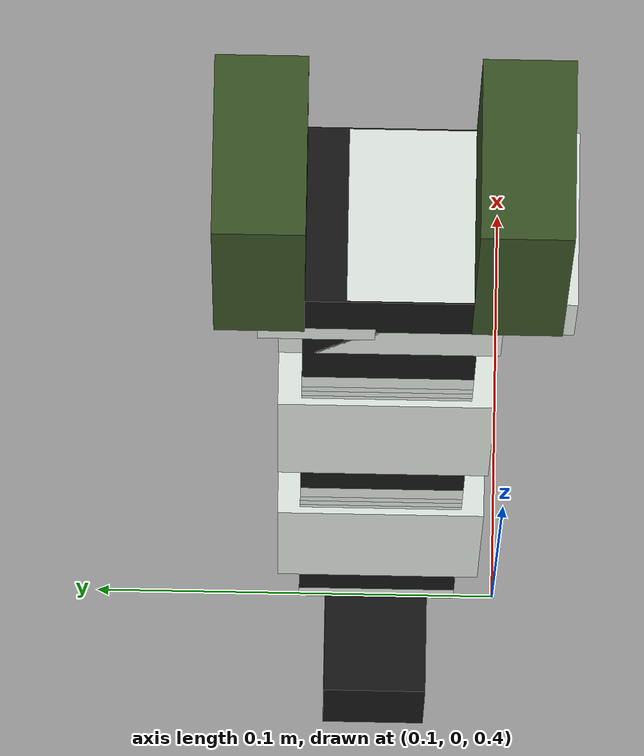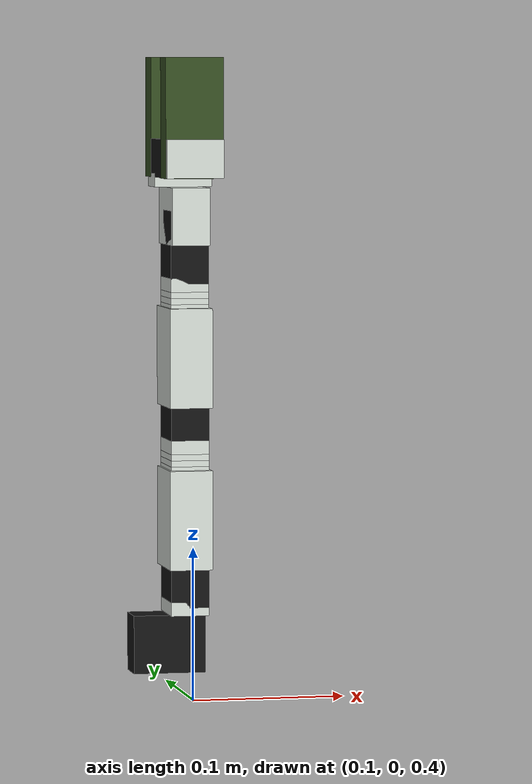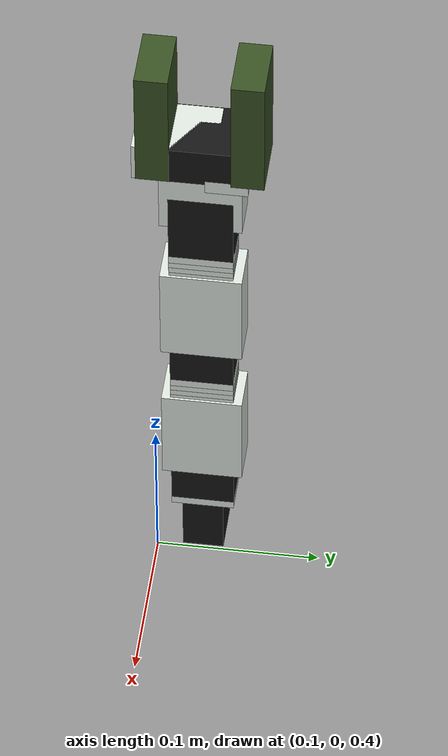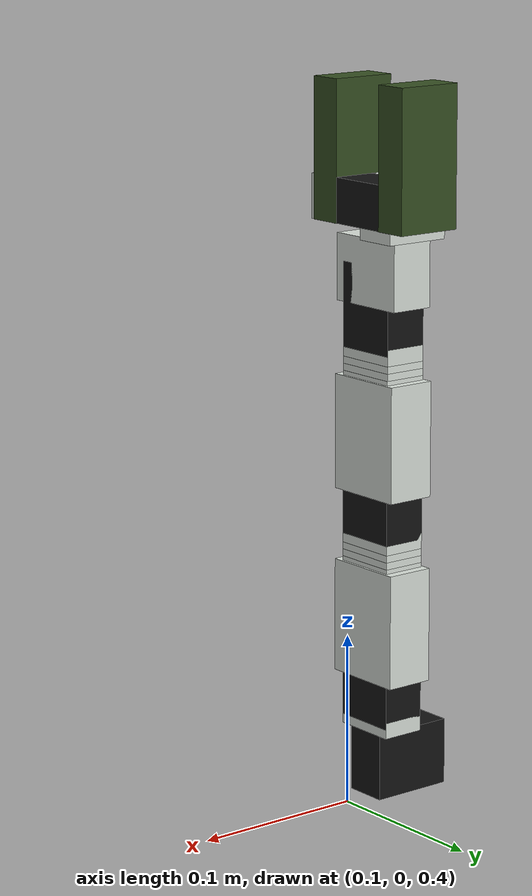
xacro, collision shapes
<?xml version="1.0"?>
<!-- Describe URDF for Turtlebot Arm -->
<robot name="turtlebot_arm" xmlns:xacro="http://ros.org/wiki/xacro">

    <!-- We can configure joints velocity limit and lower/upper limits
         to allow access to different operational areas, e.g. left handed vs. right handed robot -->
    <xacro:property name="joints_vlimit" value="1.571"/>
    <xacro:property name="pan_llimit" value="-2.617"/>
    <xacro:property name="pan_ulimit" value="2.617"/>
    <xacro:property name="shoulder_llimit" value="-2.617"/>
    <xacro:property name="shoulder_ulimit" value="2.617"/>
    <xacro:property name="elbow_llimit" value="-2.617"/>
    <xacro:property name="elbow_ulimit" value="2.617"/>
    <xacro:property name="wrist_llimit" value="-1.745"/>
    <xacro:property name="wrist_ulimit" value="1.745"/>

    <!-- Included URDF Files -->
    <xacro:include filename="$(find roboarm)/urdf/turtlebot_arm/turtlebot_arm.xacro"/>

    <!-- As we don't have here a turtlebot base, add a base_link link as its location reference -->
    <link name="base_link"/>

    <!-- Used for fixing robot to Gazebo 'base_link' -->
  <link name="world"/>

  <joint name="fixed" type="fixed">
    <parent link="world"/>
    <child link="base_link"/>
  </joint>

   <!-- Gazebo configuration for arm and cannon servos control -->
  <gazebo>
    <plugin name="gazebo_ros_control" filename="libgazebo_ros_control.so">
      <robotNamespace>/turtlebot_arm</robotNamespace>
      <legacyModeNS>true</legacyModeNS>
      <robotSimType>gazebo_ros_control/DefaultRobotHWSim</robotSimType>
    </plugin>
  </gazebo>

  <xacro:macro name="servo_transmission" params="name">
    <transmission name="${name}_trans">
      <type>transmission_interface/SimpleTransmission</type>
      <actuator name="${name}_motor">
        <mechanicalReduction>1</mechanicalReduction>
      </actuator>
      <joint name="${name}_joint">
        <hardwareInterface>hardware_interface/PositionJointInterface</hardwareInterface>
      </joint>
    </transmission>
  </xacro:macro>

  <servo_transmission name="arm_shoulder_pan"/>
  <servo_transmission name="arm_shoulder_lift"/>
  <servo_transmission name="arm_elbow_flex"/>
  <servo_transmission name="arm_wrist_flex"/>
  <servo_transmission name="gripper"/>

    <!-- Turtlebot arm macro -->
    <turtlebot_arm parent="base_link" color="White" gripper_color="Green"
                    pincher_gripper="false" turtlebot_gripper="true">
      <origin xyz="0.1 0.03 0.435"/>
    </turtlebot_arm>
</robot>

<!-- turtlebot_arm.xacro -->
<!-- Arm description for Turtlebot Arm and PhantomX Pincher arm -->
<robot xmlns:xacro="http://ros.org/wiki/xacro">
  <xacro:include filename="$(find roboarm)/urdf/turtlebot_arm/arm_hardware.xacro"/>

  <material name="White">
    <color rgba="0.87 0.90 0.87 1.0"/>
  </material>
  <material name="Black">
    <color rgba="0.08 0.08 0.08 1.0"/>
  </material>
  <material name="Gray">
    <color rgba="0.2 0.2 0.21 1.0"/>
  </material>
  <material name="Green">
    <color rgba="0.22 0.32 0.14 1.0"/>
  </material>

  <xacro:macro name="turtlebot_arm" params="parent color pincher_gripper turtlebot_gripper gripper_color *origin">
    <link name="arm_base_link"/>
    <joint name="arm_base_joint" type="fixed">
      <xacro:insert_block name="origin"/>
      <parent link="${parent}"/>
      <child link="arm_base_link"/>
    </joint>

    <!-- shoulder pan joint -->
    <dynamixel_AX12_fixed parent="arm_base_link" name="arm_shoulder_pan_servo">
      <origin xyz="0 0 0" rpy="${M_PI/2} 0 ${M_PI/2}"/>
    </dynamixel_AX12_fixed>
    <bioloid_F3_revolute parent="arm_shoulder_pan_servo_link" name="arm_shoulder_pan" color="${color}"
                         vlimit="${joints_vlimit}" llimit="${pan_llimit}" ulimit="${pan_ulimit}">
      <origin xyz="0 ${AX12_WIDTH/2} 0" rpy="${-M_PI/2} ${M_PI/2} ${M_PI}"/>
    </bioloid_F3_revolute>

    <!-- shoulder lift joint -->
    <dynamixel_AX12_fixed parent="arm_shoulder_pan_link" name="arm_shoulder_lift_servo">
      <origin xyz="0 0 ${-AX12_HEIGHT-F10_HEIGHT+0.001}" rpy="0 ${M_PI} 0"/>
    </dynamixel_AX12_fixed>
    <bioloid_F4_revolute parent="arm_shoulder_lift_servo_link" name="arm_shoulder_lift" color="${color}"
                         vlimit="${joints_vlimit}" llimit="${shoulder_llimit}" ulimit="${shoulder_ulimit}">
      <origin xyz="0 0 0" rpy="0 0 0"/>
    </bioloid_F4_revolute>
    <bioloid_F10_fixed parent="arm_shoulder_lift_link" name="arm_shoulder_F10_0" color="${color}">
      <origin xyz="0 0 ${F4_HEIGHT+F10_HEIGHT/2}" rpy="0 0 0"/>
    </bioloid_F10_fixed>
    <bioloid_F10_fixed parent="arm_shoulder_F10_0_link" name="arm_shoulder_F10_1" color="${color}">
      <origin xyz="0 0 ${F10_HEIGHT}" rpy="0 0 0"/>
    </bioloid_F10_fixed>
    <bioloid_F10_fixed parent="arm_shoulder_F10_1_link" name="arm_shoulder_F10_2" color="${color}">
      <origin xyz="0 0 ${F10_HEIGHT}" rpy="0 0 0"/>
    </bioloid_F10_fixed>
    <bioloid_F3_fixed parent="arm_shoulder_F10_2_link" name="arm_shoulder_F3_0" color="${color}">
      <origin xyz="0 0 ${F10_HEIGHT/2}" rpy="0 ${M_PI} 0"/>
    </bioloid_F3_fixed>

    <!-- elbow joint -->
    <dynamixel_AX12_fixed parent="arm_shoulder_F3_0_link" name="arm_elbow_flex_servo">
      <origin xyz="0 0 ${-AX12_HEIGHT-F10_HEIGHT+0.001}" rpy="0 ${M_PI} 0"/>
    </dynamixel_AX12_fixed>
    <bioloid_F4_revolute parent="arm_elbow_flex_servo_link" name="arm_elbow_flex" color="${color}"
                         vlimit="${joints_vlimit}" llimit="${elbow_llimit}" ulimit="${elbow_ulimit}">
      <origin xyz="0 0 0" rpy="0 0 0"/>
    </bioloid_F4_revolute>
    <bioloid_F10_fixed parent="arm_elbow_flex_link" name="arm_elbow_F10_0" color="${color}">
      <origin xyz="0 0 ${F4_HEIGHT+F10_HEIGHT/2}" rpy="0 0 0"/>
    </bioloid_F10_fixed>
    <bioloid_F10_fixed parent="arm_elbow_F10_0_link" name="arm_elbow_F10_1" color="${color}">
      <origin xyz="0 0 ${F10_HEIGHT}" rpy="0 0 0"/>
    </bioloid_F10_fixed>
    <bioloid_F10_fixed parent="arm_elbow_F10_1_link" name="arm_elbow_F10_2" color="${color}">
      <origin xyz="0 0 ${F10_HEIGHT}" rpy="0 0 0"/>
    </bioloid_F10_fixed>
    <bioloid_F3_fixed parent="arm_elbow_F10_2_link" name="arm_elbow_F3_0" color="${color}">
      <origin xyz="0 0 ${F10_HEIGHT/2}" rpy="0 ${M_PI} 0"/>
    </bioloid_F3_fixed>

    <!-- wrist joint -->
    <dynamixel_AX12_fixed parent="arm_elbow_F3_0_link" name="arm_wrist_flex_servo">
      <origin xyz="0 0 ${-AX12_HEIGHT-F10_HEIGHT+0.001}" rpy="0 ${M_PI} 0"/>
    </dynamixel_AX12_fixed>
    <bioloid_F2_revolute parent="arm_wrist_flex_servo_link" name="arm_wrist_flex" color="${color}"
                         vlimit="${joints_vlimit}" llimit="${wrist_llimit}" ulimit="${wrist_ulimit}">
      <origin xyz="0 0 0" rpy="0 0 0"/>
    </bioloid_F2_revolute>

  <!-- gripper - Load either Turtlebot gripper or Pincher Gripper -->
  <xacro:if value="${pincher_gripper}">
  <xacro:include filename="$(find roboarm)/urdf/turtlebot_arm/pincher_gripper.xacro"/>
  </xacro:if>
  <xacro:if value="${turtlebot_gripper}">
  <xacro:include filename="$(find roboarm)/urdf/turtlebot_arm/turtlebot_gripper.xacro"/>
  </xacro:if>

  </xacro:macro>

</robot>

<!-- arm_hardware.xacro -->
<!-- Basic URDF components for Turtlebot Arm and PhantomX Pincher Arm-->
<robot xmlns:xacro="http://ros.org/wiki/xacro">
  <xacro:property name="M_PI" value="3.14159"/>
  <xacro:property name="M_SCALE" value="0.001"/>
  <xacro:property name="F10_HEIGHT" value="0.004"/>
  <xacro:property name="F4_HEIGHT" value="0.0525"/>
  <xacro:property name="F3_HEIGHT" value="0.009"/>
  <xacro:property name="AX12_HEIGHT" value="0.0385"/>
  <xacro:property name="AX12_WIDTH" value="0.038"/>
  <xacro:property name="AX12_LENGTH" value="0.050"/>
  <xacro:property name="F2_HEIGHT" value="0.0265"/>

  <!-- Calculates the inertial properties of a bounding box. From
       https://en.wikipedia.org/wiki/List_of_moments_of_inertia#List_of_3D_inertia_tensors-->
  <xacro:macro name="box_inertia" params="length width height mass">
    <inertial>
      <mass value="${mass}"/>
      <origin xyz="0 0 0"/>
      <inertia ixx="${mass/12*(height**2+length**2)}" ixy="0" ixz = "0"
               iyy="${mass/12*(width**2+length**2)}" iyz="0"
               izz="${mass/12*(width**2+height**2)}"/>
    </inertial>
  </xacro:macro>

  <xacro:macro name="arm_mount" params="parent name color *origin">
    <joint name="${name}_joint" type="fixed">
      <xacro:insert_block name="origin"/>
      <parent link="${parent}"/>
      <child link="${name}_link"/>
    </joint>

    <link name="${name}_link">
      <xacro:box_inertia length="0.074" width="0.074" height="0.004" mass="0.018"/>

      <visual>
        <origin xyz="-0.028 -0.0493 0.014" rpy="0.0 0.0 -${M_PI/2}"/>
        <geometry>
          <mesh filename="package://roboarm/meshes/turtlebot_arm/mount.stl" scale="${M_SCALE} ${M_SCALE} ${M_SCALE}"/>
        </geometry>
        <material name="${color}"/>
      </visual>

      <collision>
        <origin xyz="-0.01 0.0 0.0165" rpy="0.0 0.0 0.0"/>
        <geometry>
          <box size="0.074 0.074 0.004"/>
        </geometry>
      </collision>
    </link>

    <gazebo reference="${name}_link">
      <material>Gazebo/${color}</material>
      <selfCollide>true</selfCollide>
      <gravity>true</gravity>
    </gazebo>
  </xacro:macro>

  <xacro:macro name="finger_fixed" params="parent name color *origin">
    <joint name="${name}_joint" type="fixed">
      <xacro:insert_block name="origin"/>
      <parent link="${parent}"/>
      <child link="${name}_link"/>
    </joint>

    <link name="${name}_link">
      <xacro:box_inertia length="0.0783" width="0.03801" height="0.0193" mass="0.015"/>

      <visual>
        <origin xyz=" 0 0 0 " rpy="0 0 0"/>
        <geometry>
          <mesh filename="package://roboarm/meshes/turtlebot_arm/turtlebot_finger.stl" scale="${M_SCALE} ${M_SCALE} ${M_SCALE}"/>
        </geometry>
        <material name="${color}"/>
      </visual>

      <collision>
        <origin xyz="0.02645 0.0 -0.00655" rpy="0 0 0"/>
        <geometry>
          <box size="0.0783 0.03801 0.0193"/>
        </geometry>
      </collision>
    </link>

    <gazebo reference="${name}_link">
      <material>Gazebo/${color}</material>
      <selfCollide>true</selfCollide>
      <gravity>true</gravity>
    </gazebo>
  </xacro:macro>

  <xacro:macro name="dynamixel_AX12_fixed" params="parent name *origin">
    <joint name="${name}_joint" type="fixed">
      <xacro:insert_block name="origin"/>
      <parent link="${parent}"/>
      <child link="${name}_link"/>
    </joint>

    <link name="${name}_link">
      <inertial>
        <mass value="0.055"/>
        <origin xyz="0 0 0"/>
        <inertia ixx="0.000017012" ixy="0.0" ixz="0.0"
                 iyy="0.000013258" iyz="0.0"
                 izz="0.000009483"/>
      </inertial>

      <visual>
        <origin xyz=" 0 0 0 " rpy="0 0 0"/>
        <geometry>
          <mesh filename="package://roboarm/meshes/turtlebot_arm/ax12_box.stl" scale="${M_SCALE} ${M_SCALE} ${M_SCALE}"/>
        </geometry>
        <material name="Black"/>
      </visual>

      <collision>
        <origin xyz="0.0 0.0 -0.01241" rpy="0 0 0"/>
        <geometry>
          <box size="0.025 0.038 0.04762"/>
        </geometry>
      </collision>
    </link>

    <gazebo reference="${name}_link">
      <material>Gazebo/Black</material>
      <selfCollide>true</selfCollide>
      <gravity>true</gravity>
    </gazebo>
  </xacro:macro>

  <xacro:macro name="bioloid_F10_fixed" params="parent name color *origin">
    <joint name="${name}_joint" type="fixed">
      <xacro:insert_block name="origin"/>
      <parent link="${parent}"/>
      <child link="${name}_link"/>
    </joint>

    <link name="${name}_link">
      <xacro:box_inertia length="0.025" width="0.038" height="0.004" mass="0.004"/>

      <visual>
        <origin xyz=" 0 0 0 " rpy="0 0 0"/>
        <geometry>
          <mesh filename="package://roboarm/meshes/turtlebot_arm/F10.stl" scale="${M_SCALE} ${M_SCALE} ${M_SCALE}"/>
        </geometry>
        <material name="${color}"/>
      </visual>

      <collision>
        <origin xyz="0.0 0.0 0.0" rpy="0 0 0"/>
        <geometry>
          <box size="0.025 0.038 0.004"/>
        </geometry>
      </collision>
    </link>

    <gazebo reference="${name}_link">
      <material>Gazebo/${color}</material>
      <selfCollide>true</selfCollide>
      <gravity>true</gravity>
    </gazebo>
  </xacro:macro>

  <xacro:macro name="bioloid_F3_fixed" params="parent name color *origin">
    <joint name="${name}_joint" type="fixed">
      <xacro:insert_block name="origin"/>
      <parent link="${parent}"/>
      <child link="${name}_link"/>
    </joint>

    <link name="${name}_link">
      <xacro:box_inertia length="0.025" width="0.038" height="0.009" mass="0.005"/>

      <visual>
        <origin xyz=" 0 0 0 " rpy="0 0 0"/>
        <geometry>
          <mesh filename="package://roboarm/meshes/turtlebot_arm/F3.stl" scale="${M_SCALE} ${M_SCALE} ${M_SCALE}"/>
        </geometry>
        <material name="${color}"/>
      </visual>

      <collision>
        <origin xyz="0.0 0.0 -0.0045" rpy="0 0 0"/>
        <geometry>
          <box size="0.025 0.038 0.009"/>
        </geometry>
      </collision>
    </link>

    <gazebo reference="${name}_link">
      <material>Gazebo/${color}</material>
      <selfCollide>true</selfCollide>
      <gravity>true</gravity>
    </gazebo>
  </xacro:macro>

  <xacro:macro name="bioloid_F3_revolute" params="parent name color llimit ulimit vlimit *origin">
    <joint name="${name}_joint" type="revolute">
      <xacro:insert_block name="origin"/>
      <axis xyz="0 0 -1"/>
      <limit effort="1" velocity="${vlimit}" lower="${llimit}" upper="${ulimit}"/>
      <dynamics friction="0.13"/>
      <parent link="${parent}"/>
      <child link="${name}_link"/>
    </joint>

    <link name="${name}_link">
      <xacro:box_inertia length="0.025" width="0.038" height="0.009" mass="0.008"/>

      <visual>
        <origin xyz=" 0 0 0 " rpy="0 0 0"/>
        <geometry>
          <mesh filename="package://roboarm/meshes/turtlebot_arm/F3.stl" scale="${M_SCALE} ${M_SCALE} ${M_SCALE}"/>
        </geometry>
        <material name="${color}"/>
      </visual>

      <collision>
        <origin xyz="0.0 0.0 -0.0045" rpy="0 0 0"/>
        <geometry>
          <box size="0.025 0.038 0.009"/>
        </geometry>
      </collision>
    </link>

    <gazebo reference="${name}_link">
      <material>Gazebo/${color}</material>
      <selfCollide>true</selfCollide>
      <gravity>true</gravity>
    </gazebo>
  </xacro:macro>

  <xacro:macro name="bioloid_F2_revolute" params="parent name color llimit ulimit vlimit *origin">
    <joint name="${name}_joint" type="revolute">
      <xacro:insert_block name="origin"/>
      <axis xyz="0 1 0"/>
      <limit effort="1" velocity="${vlimit}" lower="${llimit}" upper="${ulimit}"/>
      <dynamics friction="0.13"/>
      <parent link="${parent}"/>
      <child link="${name}_link"/>
    </joint>

    <link name="${name}_link">
      <xacro:box_inertia length="0.025" width="0.0485" height="0.0375" mass="0.010"/>

      <visual>
        <origin xyz=" 0 0 0 " rpy="0 0 0"/>
        <geometry>
          <mesh filename="package://roboarm/meshes/turtlebot_arm/F2.stl" scale="${M_SCALE} ${M_SCALE} ${M_SCALE}"/>
        </geometry>
        <material name="${color}"/>
      </visual>

      <collision>
        <origin xyz="0.0 0.0 0.00775" rpy="0 0 0"/>
        <geometry>
          <box size="0.025 0.0485 0.0375"/>
        </geometry>
      </collision>
    </link>

    <gazebo reference="${name}_link">
      <material>Gazebo/${color}</material>
      <selfCollide>true</selfCollide>
      <gravity>true</gravity>
    </gazebo>
  </xacro:macro>

  <xacro:macro name="bioloid_F4_revolute" params="parent name color llimit ulimit vlimit *origin">
    <joint name="${name}_joint" type="revolute">
      <xacro:insert_block name="origin"/>
      <axis xyz="0 1 0"/>
      <limit effort="1" velocity="${vlimit}" lower="${llimit}" upper="${ulimit}"/>
      <dynamics friction="0.13"/>
      <parent link="${parent}"/>
      <child link="${name}_link"/>
    </joint>

    <link name="${name}_link">
      <xacro:box_inertia length="0.028" width="0.0485" height="0.065" mass="0.016"/>

      <visual>
        <origin xyz=" 0 0 0 " rpy="0 0 0"/>
        <geometry>
          <mesh filename="package://roboarm/meshes/turtlebot_arm/F4.stl" scale="${M_SCALE} ${M_SCALE} ${M_SCALE}"/>
        </geometry>
        <material name="${color}"/>
      </visual>

      <collision>
        <origin xyz="0.0 0.0 0.0215" rpy="0 0 0"/>
        <geometry>
          <box size="0.028 0.0485 0.065"/>
        </geometry>
      </collision>
    </link>

    <gazebo reference="${name}_link">
      <material>Gazebo/${color}</material>
      <selfCollide>true</selfCollide>
      <gravity>true</gravity>
    </gazebo>
  </xacro:macro>

  <xacro:macro name="gripper_finger_base" params="parent name color *origin">
    <joint name="${name}_joint" type="fixed">
      <xacro:insert_block name="origin"/>
      <parent link="${parent}"/>
      <child link="${name}_link"/>
    </joint>

    <link name="${name}_link">
      <xacro:box_inertia length="0.002" width="0.040" height="0.075" mass="0.00001"/>
      <visual>
        <origin xyz="0.016 0 -.015 " rpy="${M_PI} ${-M_PI/2} ${M_PI/2}"/>
        <geometry>
          <mesh filename="package://roboarm/meshes/turtlebot_arm/pincher_finger_base.stl" scale=".01 .01 .01"/>
        </geometry>
        <material name="${color}"/>
      </visual>

      <collision>
        <origin xyz="0.016 0.0 -0.015" rpy="0 0 0"/>
        <geometry>
          <box size="0.002 0.040 0.075"/>
        </geometry>
      </collision>
    </link >

    <gazebo reference="${name}_link">
      <material>Gazebo/${color}</material>
      <selfCollide>true</selfCollide>
      <gravity>true</gravity>
    </gazebo>
  </xacro:macro>

    <xacro:macro name="pincher_gripper" params="name color *origin">
      <link name="${name}_link">
      <xacro:box_inertia length="0.036" width="0.028" height="0.004" mass="0.00001"/>
      <visual>
        <xacro:insert_block name="origin"/>
        <geometry>
          <mesh filename="package://roboarm/meshes/turtlebot_arm/pincher_finger.stl" scale=".01 .01 .01"/>
        </geometry>
        <material name="${color}"/>
      </visual>
      <collision>
        <xacro:insert_block name="origin"/>
        <geometry>
          <box size="0.023 0.028 0.038"/>
        </geometry>
      </collision>
    </link>

    <gazebo reference="${name}_link">
      <material>Gazebo/${color}</material>
      <selfCollide>true</selfCollide>
      <gravity>true</gravity>
    </gazebo>
  </xacro:macro>
</robot>

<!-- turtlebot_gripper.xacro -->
<!-- Turtlebot Arm gripper URDF-->
<robot xmlns:xacro="http://ros.org/wiki/xacro">
    <bioloid_F3_fixed parent="arm_wrist_flex_link" name="arm_wrist_F3_0" color="${color}">
      <origin xyz="0 0.016 ${F2_HEIGHT}" rpy="0 ${M_PI} ${-M_PI/2}"/>
    </bioloid_F3_fixed>
    <!-- gripper joint -->
    <dynamixel_AX12_fixed parent="arm_wrist_F3_0_link" name="gripper_servo">
      <origin xyz="-0.02275 0 ${-AX12_WIDTH/2}" rpy="${M_PI} ${M_PI/2} 0"/>
    </dynamixel_AX12_fixed>

    <!-- finger 1 -->
    <joint name="gripper_joint" type="revolute">
      <origin xyz="0 0 0" rpy="0 0 0"/>
      <axis xyz="0 1 0"/>
      <limit effort="1" velocity="0.785" lower="-0.40" upper="0.46"/>
      <parent link="gripper_servo_link"/>
      <child link="gripper_active_link"/>
    </joint>
    <link name="gripper_active_link">
      <inertial>
        <mass value="0.010"/>
        <origin xyz="0 0 0"/>
        <inertia ixx="3.13e-6" ixy="0.0" ixz="0.0"
                 iyy="2.48e-6" iyz="0.0"
                 izz="1.69e-6"/>
      </inertial>
      <visual>
        <origin xyz=" 0 0 0 " rpy="0 0 0"/>
        <geometry>
          <mesh filename="package://roboarm/meshes/turtlebot_arm/F2.stl" scale="${M_SCALE} ${M_SCALE} ${M_SCALE}"/>
        </geometry>
        <material name="${color}"/>
      </visual>
      <collision>
        <origin xyz="0.0 0.0 0.00775" rpy="0 0 0"/>
        <geometry>
          <box size="0.025 0.0375 0.0485"/>
        </geometry>
      </collision>
    </link>
    <finger_fixed parent="gripper_active_link" name="gripper_active_finger" color="${gripper_color}">
      <origin xyz="0 0 ${F2_HEIGHT}" rpy="0 0 0"/>
    </finger_fixed>

    <!-- finger 2 -->
    <bioloid_F3_fixed parent="gripper_servo_link" name="gripper_static" color="${color}">
      <origin xyz="0 0 ${-AX12_HEIGHT-F10_HEIGHT+0.001}" rpy="0 ${M_PI} 0"/>
    </bioloid_F3_fixed>
    <finger_fixed parent="gripper_static_link" name="gripper_static_finger" color="${gripper_color}">
      <origin xyz="0 0 0" rpy="0 0 ${M_PI}"/>
    </finger_fixed>
</robot>
